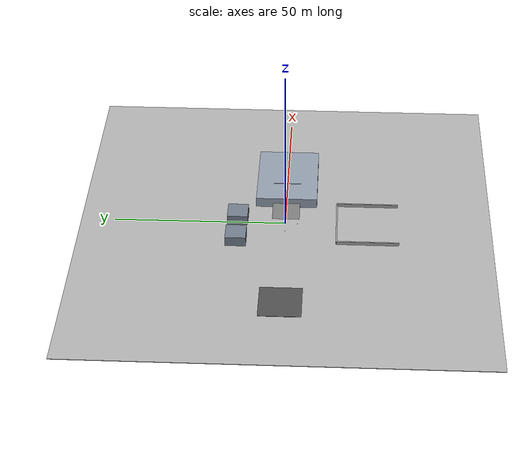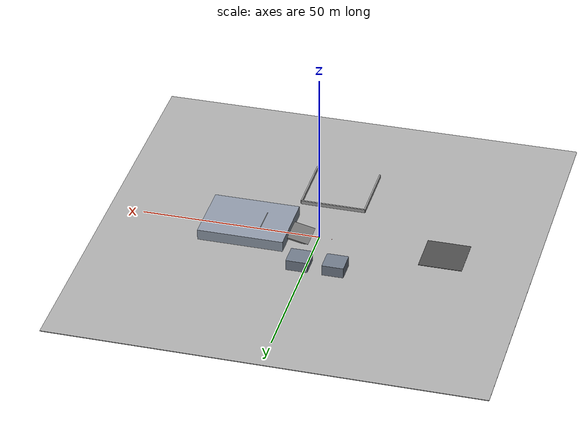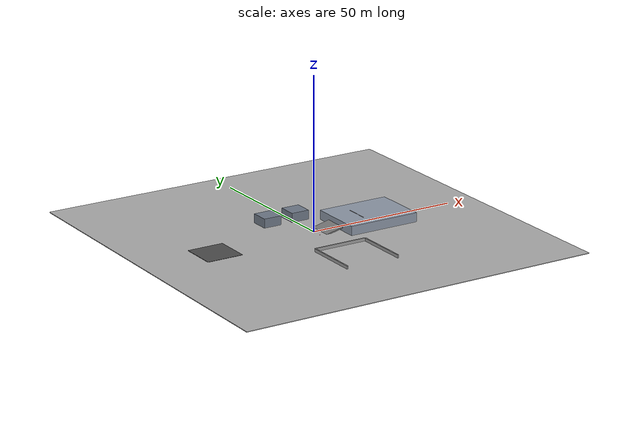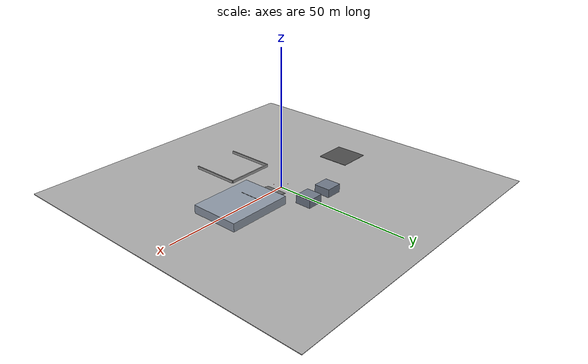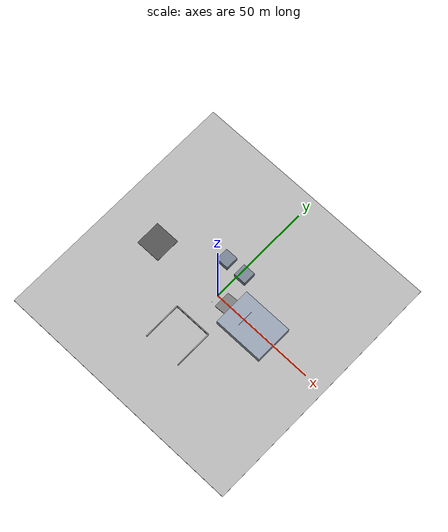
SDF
<?xml version="1.0" ?>
<sdf version="1.9">
  <world name="terrain_v1">

    <gravity>0 0 -9.81</gravity>

    <physics name="default_physics" type="ode">
      <max_step_size>0.004</max_step_size>
      <real_time_factor>1.0</real_time_factor>
      <real_time_update_rate>250</real_time_update_rate>
    </physics>

    <scene>
      <ambient>0.75 0.75 0.75 1</ambient>
      <background>0.85 0.88 0.92 1</background>
      <shadows>false</shadows>
    </scene>

    <light name="sun" type="directional">
      <cast_shadows>false</cast_shadows>
      <pose>0 0 100 0 0 0</pose>
      <diffuse>0.95 0.95 0.95 1</diffuse>
      <specular>0.2 0.2 0.2 1</specular>
      <direction>-0.45 0.15 -0.88</direction>
    </light>

    <!-- Main flat ground -->
    <model name="main_ground">
      <static>true</static>
      <link name="link">
        <collision name="collision">
          <geometry>
            <box>
              <size>120 120 0.2</size>
            </box>
          </geometry>
        </collision>
        <visual name="visual">
          <geometry>
            <box>
              <size>120 120 0.2</size>
            </box>
          </geometry>
          <material>
            <ambient>0.58 0.58 0.58 1</ambient>
            <diffuse>0.68 0.68 0.68 1</diffuse>
          </material>
        </visual>
      </link>
      <pose>0 0 -0.1 0 0 0</pose>
    </model>

    <!-- Spawn zone -->
    <model name="spawn_zone">
      <static>true</static>
      <link name="link">
        <collision name="collision">
          <geometry>
            <box>
              <size>12 12 0.12</size>
            </box>
          </geometry>
        </collision>
        <visual name="visual">
          <geometry>
            <box>
              <size>12 12 0.12</size>
            </box>
          </geometry>
          <material>
            <ambient>0.22 0.22 0.22 1</ambient>
            <diffuse>0.30 0.30 0.30 1</diffuse>
          </material>
        </visual>
      </link>
      <pose>-35 0 0.06 0 0 0</pose>
    </model>

    <include>
      <uri>model://red_can</uri>
      <name>red_can_1</name>
      <pose>3.5 0 0 0 0 0</pose>
    </include>
    <include>
      <uri>model://red_can</uri>
      <name>red_can_2</name>
      <pose>-3.5 0 0 0 0 0.6</pose>
    </include>
    <include>
      <uri>model://red_can</uri>
      <name>red_can_3</name>
      <pose>0 3.5 0 0 0 1.2</pose>
    </include>
    <include>
      <uri>model://red_can</uri>
      <name>red_can_4</name>
      <pose>0 -3.5 0 0 0 1.8</pose>
    </include>

    <!-- Raised area -->
    <model name="raised_area">
      <static>true</static>
      <link name="link">
        <collision name="collision">
          <geometry>
            <box>
              <size>24 18 3</size>
            </box>
          </geometry>
        </collision>
        <visual name="visual">
          <geometry>
            <box>
              <size>24 18 3</size>
            </box>
          </geometry>
          <material>
            <ambient>0.46 0.50 0.56 1</ambient>
            <diffuse>0.56 0.60 0.66 1</diffuse>
          </material>
        </visual>
      </link>
      <pose>20 0 1.5 0 0 0</pose>
    </model>

    <!-- Ramp up -->
    <model name="ramp_up">
      <static>true</static>
      <link name="link">
        <collision name="collision">
          <geometry>
            <box>
              <size>16 8 0.4</size>
            </box>
          </geometry>
        </collision>
        <visual name="visual">
          <geometry>
            <box>
              <size>16 8 0.4</size>
            </box>
          </geometry>
          <material>
            <ambient>0.36 0.36 0.36 1</ambient>
            <diffuse>0.46 0.46 0.46 1</diffuse>
          </material>
        </visual>
      </link>
      <pose>8 0 1.1 0 -0.22 0</pose>
    </model>

    <!-- Lower pocket -->
    <model name="lower_pocket_floor">
      <static>true</static>
      <link name="link">
        <collision name="collision">
          <geometry>
            <box>
              <size>18 18 0.2</size>
            </box>
          </geometry>
        </collision>
        <visual name="visual">
          <geometry>
            <box>
              <size>18 18 0.2</size>
            </box>
          </geometry>
          <material>
            <ambient>0.44 0.40 0.36 1</ambient>
            <diffuse>0.54 0.50 0.46 1</diffuse>
          </material>
        </visual>
      </link>
      <pose>0 -24 -1.0 0 0 0</pose>
    </model>

    <!-- Pocket boundary walls -->
    <model name="pocket_wall_1">
      <static>true</static>
      <link name="link">
        <collision name="collision">
          <geometry>
            <box>
              <size>18 0.4 2</size>
            </box>
          </geometry>
        </collision>
        <visual name="visual">
          <geometry>
            <box>
              <size>18 0.4 2</size>
            </box>
          </geometry>
          <material>
            <ambient>0.52 0.52 0.52 1</ambient>
            <diffuse>0.62 0.62 0.62 1</diffuse>
          </material>
        </visual>
      </link>
      <pose>0 -15 0 0 0 0</pose>
    </model>

    <model name="pocket_wall_2">
      <static>true</static>
      <link name="link">
        <collision name="collision">
          <geometry>
            <box>
              <size>0.4 18 2</size>
            </box>
          </geometry>
        </collision>
        <visual name="visual">
          <geometry>
            <box>
              <size>0.4 18 2</size>
            </box>
          </geometry>
          <material>
            <ambient>0.52 0.52 0.52 1</ambient>
            <diffuse>0.62 0.62 0.62 1</diffuse>
          </material>
        </visual>
      </link>
      <pose>-9 -24 0 0 0 0</pose>
    </model>

    <model name="pocket_wall_3">
      <static>true</static>
      <link name="link">
        <collision name="collision">
          <geometry>
            <box>
              <size>0.4 18 2</size>
            </box>
          </geometry>
        </collision>
        <visual name="visual">
          <geometry>
            <box>
              <size>0.4 18 2</size>
            </box>
          </geometry>
          <material>
            <ambient>0.52 0.52 0.52 1</ambient>
            <diffuse>0.62 0.62 0.62 1</diffuse>
          </material>
        </visual>
      </link>
      <pose>9 -24 0 0 0 0</pose>
    </model>

    <!-- Narrow passage maker -->
    <model name="choke_block_left">
      <static>true</static>
      <link name="link">
        <collision name="collision">
          <geometry>
            <box>
              <size>6 6 3</size>
            </box>
          </geometry>
        </collision>
        <visual name="visual">
          <geometry>
            <box>
              <size>6 6 3</size>
            </box>
          </geometry>
          <material>
            <ambient>0.34 0.38 0.44 1</ambient>
            <diffuse>0.44 0.48 0.54 1</diffuse>
          </material>
        </visual>
      </link>
      <pose>-8 14 1.5 0 0 0</pose>
    </model>

    <model name="choke_block_right">
      <static>true</static>
      <link name="link">
        <collision name="collision">
          <geometry>
            <box>
              <size>6 6 3</size>
            </box>
          </geometry>
        </collision>
        <visual name="visual">
          <geometry>
            <box>
              <size>6 6 3</size>
            </box>
          </geometry>
          <material>
            <ambient>0.34 0.38 0.44 1</ambient>
            <diffuse>0.44 0.48 0.54 1</diffuse>
          </material>
        </visual>
      </link>
      <pose>2 14 1.5 0 0 0</pose>
    </model>

  </world>
</sdf>

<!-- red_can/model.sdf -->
<sdf version="1.9">
  <model name="red_can">
    <static>true</static>
    <link name="link">
      <pose>0 0 0.061 0 0 0</pose>
      <collision name="collision">
        <geometry>
          <cylinder>
            <radius>0.033</radius>
            <length>0.122</length>
          </cylinder>
        </geometry>
      </collision>
      <visual name="visual">
        <geometry>
          <cylinder>
            <radius>0.033</radius>
            <length>0.122</length>
          </cylinder>
        </geometry>
        <material>
          <!-- Saturated red — chosen to be a clean target for both the
               YOLO "bottle" placeholder detector and the HSV red-mask
               filter in swarm_target_detection. -->
          <ambient>0.8 0.02 0.02 1</ambient>
          <diffuse>0.85 0.05 0.05 1</diffuse>
          <specular>0.3 0.3 0.3 1</specular>
        </material>
      </visual>
    </link>
  </model>
</sdf>
